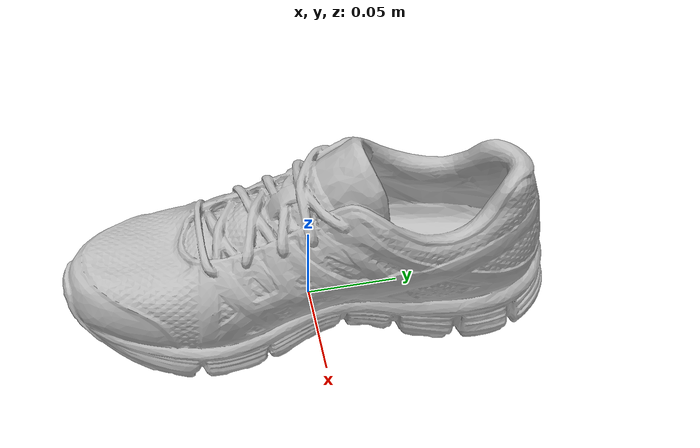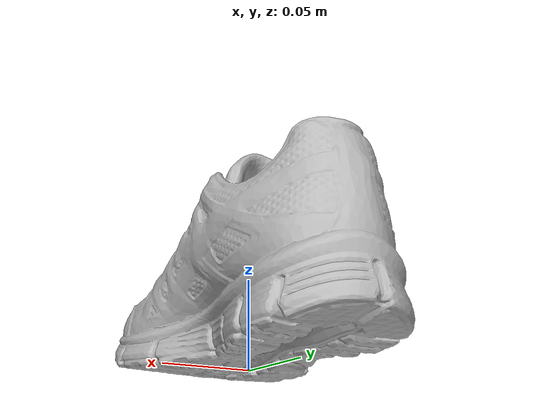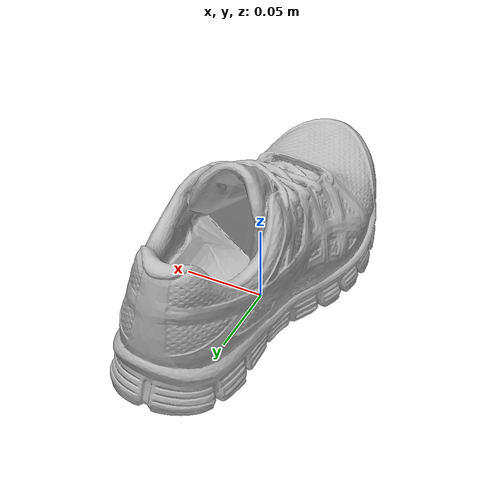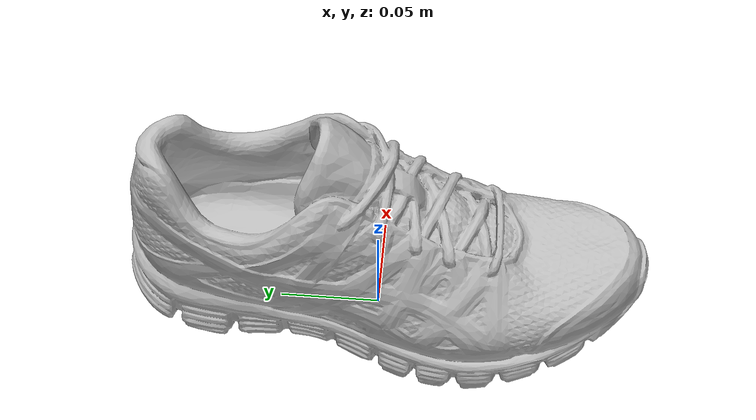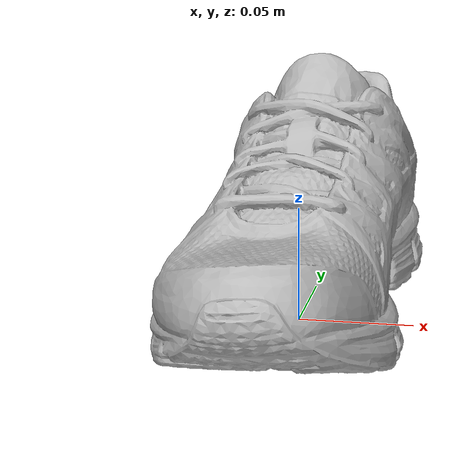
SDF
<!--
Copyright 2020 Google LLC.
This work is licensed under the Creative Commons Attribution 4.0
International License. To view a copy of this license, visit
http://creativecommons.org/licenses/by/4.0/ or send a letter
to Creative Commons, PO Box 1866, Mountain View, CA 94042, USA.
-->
<?xml version="1.0" ?>
<sdf version="1.6">
  <model name="ASICS_GELBlur33_20_GS_Flash_YellowHot_PunchSilver">
    <link name="link_0">
      <visual name="visual">
        <geometry>
          <mesh>
            <uri>meshes/model.obj</uri>
          </mesh>
        </geometry>
      </visual>
      <collision name="collision_0">
        <geometry>
          <mesh>
            <uri>meshes/model.obj</uri>
          </mesh>
        </geometry>
      </collision>
    </link>
  </model>
</sdf>
